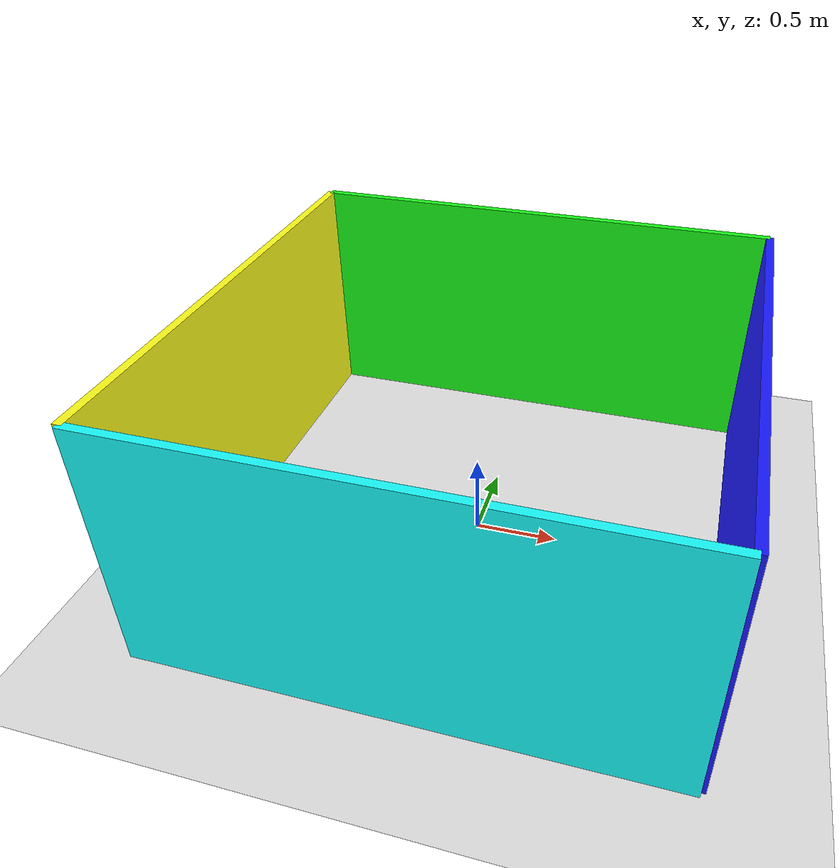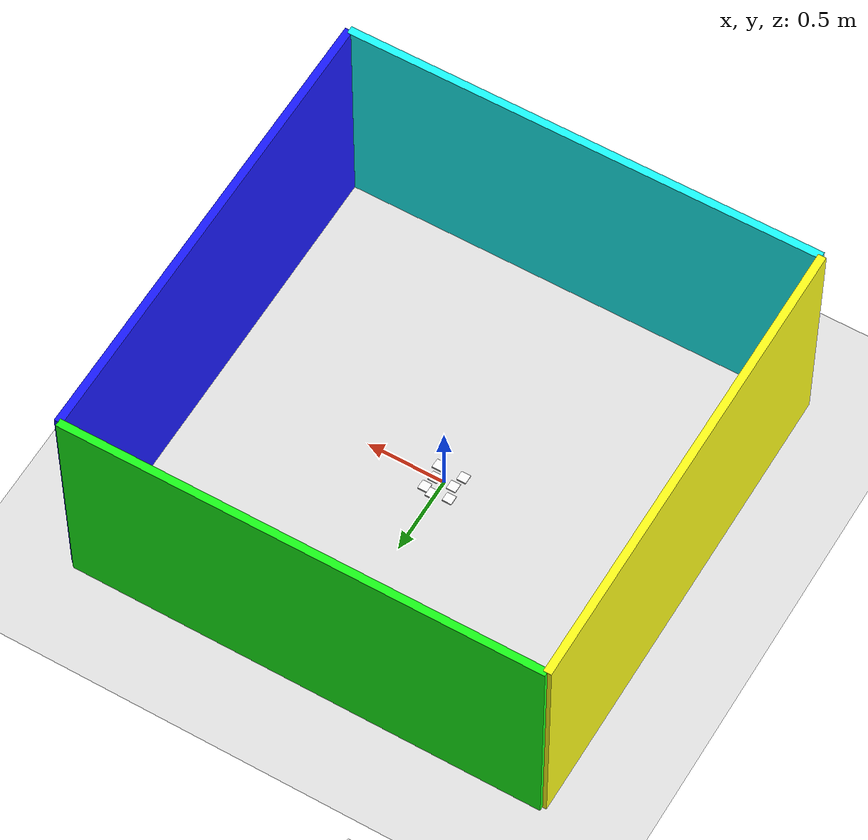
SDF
<?xml version="1.0" ?>
<sdf version="1.9">
  <world name="sentai_whycon_small_dataset">
    <physics type="ode">
      <max_step_size>0.001</max_step_size>
      <real_time_factor>1.0</real_time_factor>
      <real_time_update_rate>1000</real_time_update_rate>
    </physics>
    <plugin name='gz::sim::systems::Physics' filename='libgz-sim-physics-system.so'/>
    <plugin name='gz::sim::systems::UserCommands' filename='libgz-sim-user-commands-system.so'/>
    <plugin name='gz::sim::systems::SceneBroadcaster' filename='libgz-sim-scene-broadcaster-system.so'/>
    <plugin name='gz::sim::systems::Contact' filename='libgz-sim-contact-system.so'/>
    <plugin name='gz::sim::systems::Imu' filename='libgz-sim-imu-system.so'/>
    <plugin name='gz::sim::systems::AirPressure' filename='libgz-sim-air-pressure-system.so'/>
    <plugin name='gz::sim::systems::Sensors' filename='libgz-sim-sensors-system.so'>
      <render_engine>ogre2</render_engine>
    </plugin>

    <!--  Wind disturbance — perturbs X/Y so we can see whether   -->
    <!--  flow stabilizes the drone (with bridge --send-flow) or  -->
    <!--  the drone drifts away (no flow source).                 -->
    <!--  Constant 0.5 m/s in +X world (~5 km/h, mild breeze).    -->
    <!--  WindEffects plugin applies this to any model with a     -->
    <!--  model.sdf.jinja so this actually pushes the drone).     -->
    <plugin filename="gz-sim-wind-effects-system" name="gz::sim::systems::WindEffects">
      <!-- NO WIND (s127 isolation test 2026-05-13: zero base + zero stochastic
           to determine if -X drift survives without atmospheric perturbation) -->
      <horizontal>
        <magnitude>
          <time_for_rise>2</time_for_rise>
          <sin>
            <amplitude_percent>0.0</amplitude_percent>
            <period>8</period>
          </sin>
          <noise type="gaussian"><mean>0</mean><stddev>0.0</stddev></noise>
        </magnitude>
        <direction>
          <time_for_rise>2</time_for_rise>
          <sin>
            <amplitude>0</amplitude>
            <period>15</period>
          </sin>
          <noise type="gaussian"><mean>0</mean><stddev>0.0</stddev></noise>
        </direction>
      </horizontal>
      <vertical>
        <noise type="gaussian"><mean>0</mean><stddev>0.0</stddev></noise>
      </vertical>
    </plugin>
    <wind>
      <linear_velocity>0 0 0</linear_velocity>
    </wind>

    <gravity>0 0 -9.80665</gravity>
    <magnetic_field>6e-06 2.3e-05 -4.2e-05</magnetic_field>
    <atmosphere type='adiabatic'/>

    <scene>
      <grid>false</grid>
      <background>1.0 0.1 0.1 1</background>
      <ambient>0.5 0.5 0.5 1</ambient>
      <background>0.7 0.85 1.0 1</background>
      <shadows>true</shadows>
    </scene>

    <!--  GROUND PLANE — checkerboard, 4x4 m, 5 cm squares     -->
    <!-- Drone hovers at ~1 m, cam FOV ~60° → footprint ~1.2x  -->
    <!-- 1.2 m on ground.  Squares of 5 cm (0.05 m) give ~24   -->
    <!-- visible per axis: dense feature texture, no aliasing. -->
    <!-- World scale 4x4 m so we see "infinite floor" in any   -->
    <!-- 1-2 m flight envelope.                                -->
    <model name="ground_plane">
      <static>true</static>
      <link name="link">
        <collision name="collision">
          <geometry>
            <plane>
              <normal>0 0 1</normal>
              <size>4 4</size>
            </plane>
          </geometry>
        </collision>
        <visual name="visual">
          <geometry>
            <plane>
              <normal>0 0 1</normal>
              <size>4 4</size>
            </plane>
          </geometry>
          <material>
            <diffuse>0.9 0.9 0.9 1</diffuse>
            <specular>0.5 0.5 0.5 1</specular>
            <pbr>
              <metal>
                <albedo_map>materials/textures/suburbs_bg.png</albedo_map>
              </metal>
            </pbr>
          </material>
        </visual>
      </link>
    </model>

    <model name="ground_plane_deep">
      <static>true</static>
      <pose>0 0 -10 0 0 0</pose>
      <link name="link">
        <visual name="visual">
          <geometry>
            <plane>
              <normal>0 0 1</normal>
              <size>40 40</size>
            </plane>
          </geometry>
          <material>
            <diffuse>1 1 1 1</diffuse>
            <pbr>
              <metal>
                <albedo_map>materials/textures/checker.png</albedo_map>
              </metal>
            </pbr>
          </material>
        </visual>
      </link>
    </model>

    <!--  TINY COLORED MARKERS — feature grid for optical flow -->
    <!-- Drone hovers at ~1 m above origin.  Markers are 5 cm  -->
    <!-- cubes within ±0.6 m of origin so they stay in-frame   -->
    <!-- the whole flight.  Tiny (5 cm) so they don't dominate -->
    <!-- the scene; checkerboard ground does most feature work,-->
    <!-- markers add color/landmark anchors.                   -->

    <model name="whycon_NW">
      <static>true</static>
      <pose>-0.08 +0.08 0.005  0 0 0</pose>
      <link name="link"><visual name="v">
        <geometry><box><size>0.06 0.06 0.01</size></box></geometry>
        <material><ambient>1 1 1 1</ambient><diffuse>1 1 1 1</diffuse>
          <pbr><metal>
            <albedo_map>materials/textures/whycon_krajnik.png</albedo_map>
            <metalness>0</metalness><roughness>1</roughness>
          </metal></pbr></material>
      </visual></link>
    </model>
    <model name="whycon_NE">
      <static>true</static>
      <pose>+0.08 +0.08 0.005  0 0 0</pose>
      <link name="link"><visual name="v">
        <geometry><box><size>0.06 0.06 0.01</size></box></geometry>
        <material><ambient>1 1 1 1</ambient><diffuse>1 1 1 1</diffuse>
          <pbr><metal>
            <albedo_map>materials/textures/whycon_krajnik.png</albedo_map>
            <metalness>0</metalness><roughness>1</roughness>
          </metal></pbr></material>
      </visual></link>
    </model>
    <model name="whycon_W">
      <static>true</static>
      <pose>-0.06 0.00 0.005  0 0 0</pose>
      <link name="link"><visual name="v">
        <geometry><box><size>0.06 0.06 0.01</size></box></geometry>
        <material><ambient>1 1 1 1</ambient><diffuse>1 1 1 1</diffuse>
          <pbr><metal>
            <albedo_map>materials/textures/whycon_krajnik.png</albedo_map>
            <metalness>0</metalness><roughness>1</roughness>
          </metal></pbr></material>
      </visual></link>
    </model>
    <model name="whycon_E">
      <static>true</static>
      <pose>+0.06 0.00 0.005  0 0 0</pose>
      <!-- iter-11: mid-bars at ±0.12 m = 0.75 × ±0.16 m corner span -->
      <link name="link"><visual name="v">
        <geometry><box><size>0.06 0.06 0.01</size></box></geometry>
        <material><ambient>1 1 1 1</ambient><diffuse>1 1 1 1</diffuse>
          <pbr><metal>
            <albedo_map>materials/textures/whycon_krajnik.png</albedo_map>
            <metalness>0</metalness><roughness>1</roughness>
          </metal></pbr></material>
      </visual></link>
    </model>
    <model name="whycon_SW">
      <static>true</static>
      <pose>-0.08 -0.08 0.005  0 0 0</pose>
      <link name="link"><visual name="v">
        <geometry><box><size>0.06 0.06 0.01</size></box></geometry>
        <material><ambient>1 1 1 1</ambient><diffuse>1 1 1 1</diffuse>
          <pbr><metal>
            <albedo_map>materials/textures/whycon_krajnik.png</albedo_map>
            <metalness>0</metalness><roughness>1</roughness>
          </metal></pbr></material>
      </visual></link>
    </model>
    <model name="whycon_SE">
      <static>true</static>
      <pose>+0.08 -0.08 0.005  0 0 0</pose>
      <link name="link"><visual name="v">
        <geometry><box><size>0.06 0.06 0.01</size></box></geometry>
        <material><ambient>1 1 1 1</ambient><diffuse>1 1 1 1</diffuse>
          <pbr><metal>
            <albedo_map>materials/textures/whycon_krajnik.png</albedo_map>
            <metalness>0</metalness><roughness>1</roughness>
          </metal></pbr></material>
      </visual></link>
    </model>

    <!--  Fixed downward-facing camera at z=1.5m looking down  -->
    <!--  (proxy for "what the drone sees at 1m hover" since   -->
    <!--   attaching camera to imported model is fragile in    -->
    <!--   Gazebo Garden).  Drone hovers at z=1m, so it appears -->
    <!--   in the cadru when in flight.                         -->
    <!-- (no camera model here — see model.sdf.jinja sensor "downward_cam") -->

    <!--  4 walls around the arena (3 m × 3 m × 1.5 m tall)        -->
    <!--  Reason: when the drone tilts during X/Y drift the camera   -->
    <!--  catches the wall edges, which gives phase-correlation a    -->
    <!--  reliable feature even at low altitude.  Walls are coloured -->
    <!--  uniquely (north=blue, south=yellow, east=green, west=cyan) -->
    <!--  so the operator can tell orientation from the PiP.         -->
    <model name="wall_north">
      <static>true</static><pose>1.5 0 0.75 0 0 0</pose>
      <link name="link"><visual name="v"><geometry><box><size>0.05 3.0 1.5</size></box></geometry>
        <material><ambient>0 0 0.6 1</ambient><diffuse>0.1 0.1 1 1</diffuse></material></visual>
        <collision name="c"><geometry><box><size>0.05 3.0 1.5</size></box></geometry></collision></link>
    </model>
    <model name="wall_south">
      <static>true</static><pose>-1.5 0 0.75 0 0 0</pose>
      <link name="link"><visual name="v"><geometry><box><size>0.05 3.0 1.5</size></box></geometry>
        <material><ambient>0.6 0.6 0 1</ambient><diffuse>1 1 0.1 1</diffuse></material></visual>
        <collision name="c"><geometry><box><size>0.05 3.0 1.5</size></box></geometry></collision></link>
    </model>
    <model name="wall_east">
      <static>true</static><pose>0 1.5 0.75 0 0 0</pose>
      <link name="link"><visual name="v"><geometry><box><size>3.0 0.05 1.5</size></box></geometry>
        <material><ambient>0 0.6 0 1</ambient><diffuse>0.1 1 0.1 1</diffuse></material></visual>
        <collision name="c"><geometry><box><size>3.0 0.05 1.5</size></box></geometry></collision></link>
    </model>
    <model name="wall_west">
      <static>true</static><pose>0 -1.5 0.75 0 0 0</pose>
      <link name="link"><visual name="v"><geometry><box><size>3.0 0.05 1.5</size></box></geometry>
        <material><ambient>0 0.6 0.6 1</ambient><diffuse>0.1 1 1 1</diffuse></material></visual>
        <collision name="c"><geometry><box><size>3.0 0.05 1.5</size></box></geometry></collision></link>
    </model>

    <!--  Sun + sky lights      -->
    <light type="directional" name="sun">
      <cast_shadows>true</cast_shadows>
      <pose>0 0 10 0 0 0</pose>
      <diffuse>0.95 0.95 0.95 1</diffuse>
      <specular>0.3 0.3 0.3 1</specular>
      <attenuation>
        <range>1000</range>
        <constant>0.9</constant>
        <linear>0.01</linear>
        <quadratic>0.001</quadratic>
      </attenuation>
      <direction>-0.3 0.2 -0.9</direction>
    </light>

    <!-- TD-S10-B1 asymmetric WhyCon marker, proportional conceptual (0.25, 1.25). -->
    <model name="whycon_N">
      <static>true</static>
      <pose>+0.02 +0.10 0.005  0 0 0</pose>
      <link name="link"><visual name="v">
        <geometry><box><size>0.06 0.06 0.01</size></box></geometry>
        <material><ambient>1 1 1 1</ambient><diffuse>1 1 1 1</diffuse>
          <pbr><metal>
            <albedo_map>materials/textures/whycon_krajnik.png</albedo_map>
            <metalness>0</metalness><roughness>1</roughness>
          </metal></pbr></material>
      </visual></link>
    </model>

    <!-- TD-S10-B1 camera-only dataset capture model. -->
    <model name="dataset_camera">
      <static>false</static>
      <pose>0 0 0.5 0 0 0</pose>
      <link name="link">
        <gravity>false</gravity>
        <kinematic>true</kinematic>
        <sensor name="dataset_cam" type="camera">
          <always_on>true</always_on>
          <update_rate>30</update_rate>
          <pose>0 0 0 0 1.5707963 3.1415927</pose>
          <camera>
            <horizontal_fov>1.013313278</horizontal_fov>
            <image>
              <width>320</width>
              <height>240</height>
              <format>R8G8B8</format>
            </image>
            <clip>
              <near>0.01</near>
              <far>20</far>
            </clip>
          </camera>
          <topic>/dataset_cam/image</topic>
        </sensor>
      </link>
    </model>

  </world>
</sdf>
